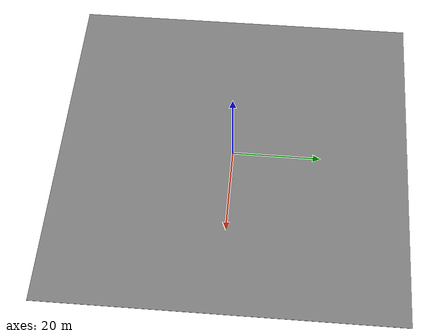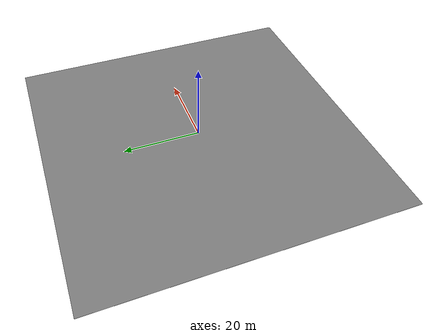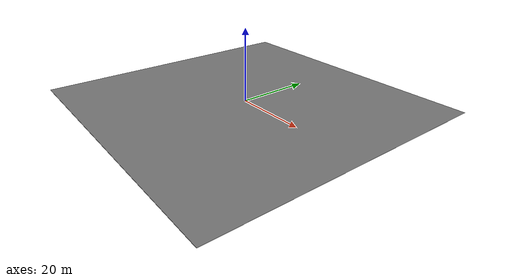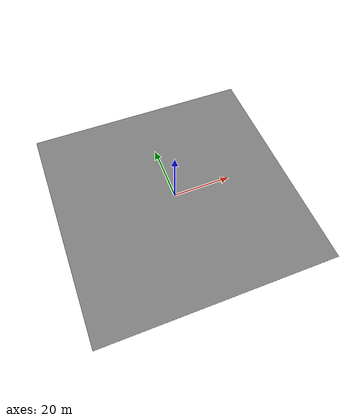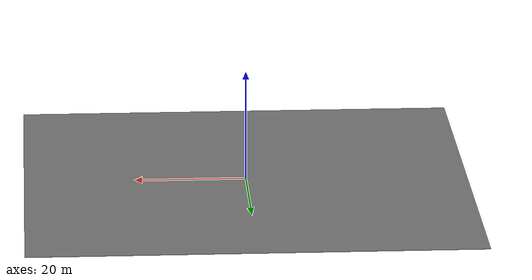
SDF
<?xml version="1.0"?>
<sdf version="1.8">
  <world name="depot">
    <gravity>0 0 -9.8066</gravity>
    <physics name="default_physics" type="ode">
        <max_step_size>0.004</max_step_size>
        <real_time_factor>1</real_time_factor>
    </physics>
    <plugin
        filename="gz-sim-physics-system"
        name="gz::sim::systems::Physics">
    </plugin>
    <plugin
        filename="gz-sim-user-commands-system"
        name="gz::sim::systems::UserCommands">
    </plugin>
    <plugin
        filename="gz-sim-scene-broadcaster-system"
        name="gz::sim::systems::SceneBroadcaster">
    </plugin>
    <plugin
        filename="gz-sim-imu-system"
        name="gz::sim::systems::Imu">
    </plugin>
    <plugin
        filename="gz-sim-navsat-system"
        name="gz::sim::systems::NavSat">
    </plugin>
    <plugin
        filename="gz-sim-sensors-system"
        name="gz::sim::systems::Sensors">
      <render_engine>ogre2</render_engine>
    </plugin>
    <plugin
        filename="gz-sim-contact-system"
        name="gz::sim::systems::Contact">
    </plugin>

    <scene>
      <ambient>0.4 0.4 0.4 1</ambient>
      <background>0.7 0.7 0.7 1</background>
      <shadows>true</shadows>
    </scene>

    <light type="directional" name="sun">
      <cast_shadows>true</cast_shadows>
      <pose>0 0 10 0 0 0</pose>
      <diffuse>0.8 0.8 0.8 1</diffuse>
      <specular>0.2 0.2 0.2 1</specular>
      <direction>-0.5 0.1 -0.9</direction>
    </light>

    <model name="depot_floor">
      <static>true</static>
      <link name="link">
        <collision name="collision">
          <geometry>
            <box>
              <size>80 80 0.1</size>
            </box>
          </geometry>
        </collision>
        <visual name="visual">
          <geometry>
            <box>
              <size>80 80 0.1</size>
            </box>
          </geometry>
          <material>
            <ambient>0.5 0.5 0.5 1</ambient>
            <diffuse>0.5 0.5 0.5 1</diffuse>
          </material>
        </visual>
      </link>
      <pose>0 0 -0.05 0 0 0</pose>
    </model>

    <spherical_coordinates>
    <surface_model>EARTH_WGS84</surface_model>
    <latitude_deg>49.9</latitude_deg>
    <longitude_deg>8.9</longitude_deg>
    <elevation>0</elevation>
    <heading_deg>0</heading_deg>
  </spherical_coordinates>
  </world>
</sdf>
